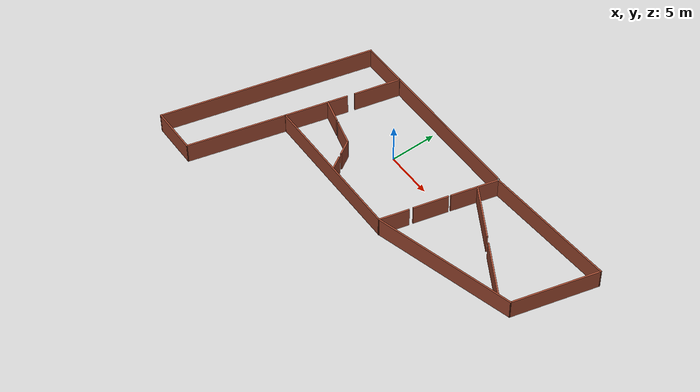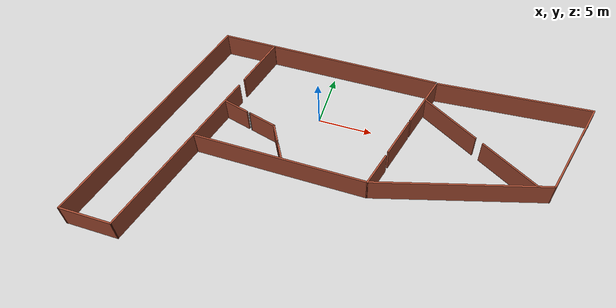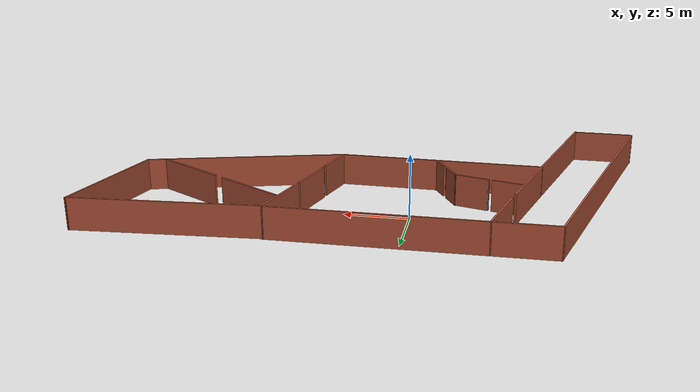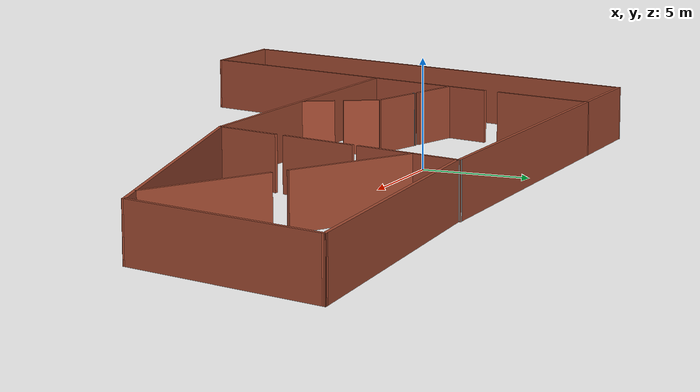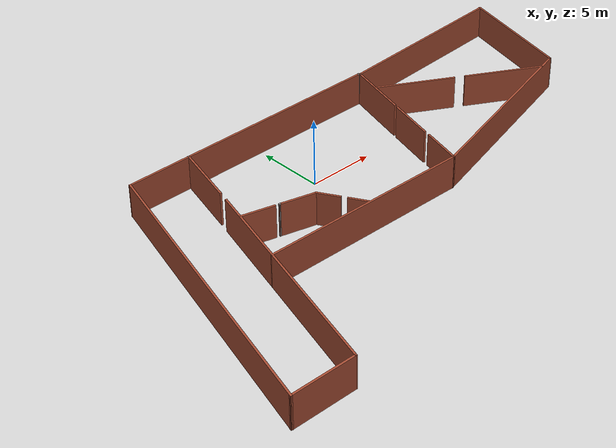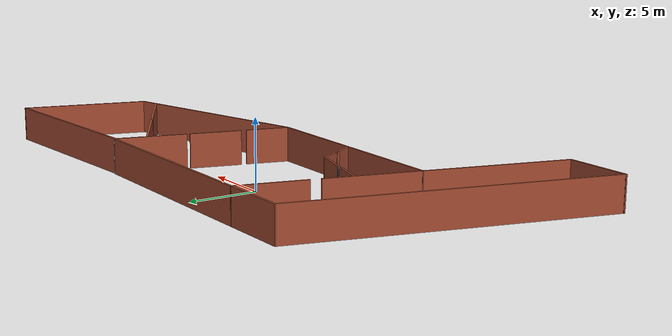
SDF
<?xml version='1.0'?>
<sdf version='1.6'>
  <model name='lab2_nasze'>
    <pose frame=''>3.48309 -5.01649 0 0 -0 0</pose>
    <link name='Wall_1'>
      <collision name='Wall_1_Collision'>
        <geometry>
          <box>
            <size>0.15 0.15 2.5</size>
          </box>
        </geometry>
        <pose frame=''>0 0 1.25 0 -0 0</pose>
      </collision>
      <visual name='Wall_1_Visual'>
        <pose frame=''>0 0 1.25 0 -0 0</pose>
        <geometry>
          <box>
            <size>0.15 0.15 2.5</size>
          </box>
        </geometry>
        <material>
          <script>
            <uri>file://media/materials/scripts/gazebo.material</uri>
            <name>Gazebo/Grey</name>
          </script>
          <ambient>1 1 1 1</ambient>
        </material>
        <meta>
          <layer>0</layer>
        </meta>
      </visual>
      <pose frame=''>-9.73023 10.5497 0 0 -0 0</pose>
    </link>
    <link name='Wall_11'>
      <collision name='Wall_11_Collision'>
        <geometry>
          <box>
            <size>4.99411 0.15 2.5</size>
          </box>
        </geometry>
        <pose frame=''>0 0 1.25 0 -0 0</pose>
      </collision>
      <visual name='Wall_11_Visual'>
        <pose frame=''>0 0 1.25 0 -0 0</pose>
        <geometry>
          <box>
            <size>4.99411 0.15 2.5</size>
          </box>
        </geometry>
        <material>
          <script>
            <uri>file://media/materials/scripts/gazebo.material</uri>
            <name>Gazebo/Bricks</name>
          </script>
          <ambient>1 1 1 1</ambient>
        </material>
        <meta>
          <layer>0</layer>
        </meta>
      </visual>
      <pose frame=''>-12.1523 10.5497 0 0 -0 3.14159</pose>
    </link>
    <link name='Wall_12'>
      <collision name='Wall_12_Collision'>
        <geometry>
          <box>
            <size>22.75 0.15 2.5</size>
          </box>
        </geometry>
        <pose frame=''>0 0 1.25 0 -0 0</pose>
      </collision>
      <visual name='Wall_12_Visual'>
        <pose frame=''>0 0 1.25 0 -0 0</pose>
        <geometry>
          <box>
            <size>22.75 0.15 2.5</size>
          </box>
        </geometry>
        <material>
          <script>
            <uri>file://media/materials/scripts/gazebo.material</uri>
            <name>Gazebo/Bricks</name>
          </script>
          <ambient>1 1 1 1</ambient>
        </material>
        <meta>
          <layer>0</layer>
        </meta>
      </visual>
      <pose frame=''>-17.499 -0.365307 0 0 -0 -1.8326</pose>
    </link>
    <link name='Wall_13'>
      <collision name='Wall_13_Collision'>
        <geometry>
          <box>
            <size>4.88784 0.15 2.5</size>
          </box>
        </geometry>
        <pose frame=''>0 0 1.25 0 -0 0</pose>
      </collision>
      <visual name='Wall_13_Visual'>
        <pose frame=''>0 0 1.25 0 -0 0</pose>
        <geometry>
          <box>
            <size>4.88784 0.15 2.5</size>
          </box>
        </geometry>
        <material>
          <script>
            <uri>file://media/materials/scripts/gazebo.material</uri>
            <name>Gazebo/Bricks</name>
          </script>
          <ambient>1 1 1 1</ambient>
        </material>
        <meta>
          <layer>0</layer>
        </meta>
      </visual>
      <pose frame=''>-18.0552 -11.3286 0 0 -0 -0.020389</pose>
    </link>
    <link name='Wall_15'>
      <collision name='Wall_15_Collision'>
        <geometry>
          <box>
            <size>10.5214 0.15 2.5</size>
          </box>
        </geometry>
        <pose frame=''>0 0 1.25 0 -0 0</pose>
      </collision>
      <visual name='Wall_15_Visual'>
        <pose frame=''>0 0 1.25 0 -0 0</pose>
        <geometry>
          <box>
            <size>10.5214 0.15 2.5</size>
          </box>
        </geometry>
        <material>
          <script>
            <uri>file://media/materials/scripts/gazebo.material</uri>
            <name>Gazebo/Bricks</name>
          </script>
          <ambient>1 1 1 1</ambient>
        </material>
        <meta>
          <layer>0</layer>
        </meta>
      </visual>
      <pose frame=''>-14.3067 -6.3782 0 0 -0 1.30142</pose>
    </link>
    <link name='Wall_17'>
      <collision name='Wall_17_Collision'>
        <geometry>
          <box>
            <size>6.72848 0.15 2.5</size>
          </box>
        </geometry>
        <pose frame=''>0 0 1.25 0 -0 0</pose>
      </collision>
      <visual name='Wall_17_Visual'>
        <pose frame=''>0 0 1.25 0 -0 0</pose>
        <geometry>
          <box>
            <size>6.72848 0.15 2.5</size>
          </box>
        </geometry>
        <material>
          <script>
            <uri>file://media/materials/scripts/gazebo.material</uri>
            <name>Gazebo/Bricks</name>
          </script>
          <ambient>1 1 1 1</ambient>
        </material>
        <meta>
          <layer>0</layer>
        </meta>
      </visual>
      <pose frame=''>-12.0572 1.79273 0 0 -0 1.3033</pose>
    </link>
    <link name='Wall_2'>
      <collision name='Wall_2_Collision'>
        <geometry>
          <box>
            <size>16.0059 0.15 2.5</size>
          </box>
        </geometry>
        <pose frame=''>0 0 1.25 0 -0 0</pose>
      </collision>
      <visual name='Wall_2_Visual'>
        <pose frame=''>0 0 1.25 0 -0 0</pose>
        <geometry>
          <box>
            <size>16.0059 0.15 2.5</size>
          </box>
        </geometry>
        <material>
          <script>
            <uri>file://media/materials/scripts/gazebo.material</uri>
            <name>Gazebo/Bricks</name>
          </script>
          <ambient>1 1 1 1</ambient>
        </material>
        <meta>
          <layer>0</layer>
        </meta>
      </visual>
      <pose frame=''>-1.80228 10.5497 0 0 -0 0</pose>
    </link>
    <link name='Wall_20'>
      <collision name='Wall_20_Collision'>
        <geometry>
          <box>
            <size>5.02177 0.15 2.5</size>
          </box>
        </geometry>
        <pose frame=''>0 0 1.25 0 -0 0</pose>
      </collision>
      <visual name='Wall_20_Visual'>
        <pose frame=''>0 0 1.25 0 -0 0</pose>
        <geometry>
          <box>
            <size>5.02177 0.15 2.5</size>
          </box>
        </geometry>
        <material>
          <script>
            <uri>file://media/materials/scripts/gazebo.material</uri>
            <name>Gazebo/Bricks</name>
          </script>
          <ambient>1 1 1 1</ambient>
        </material>
        <meta>
          <layer>0</layer>
        </meta>
      </visual>
      <pose frame=''>-10.3426 8.19199 0 0 -0 1.31669</pose>
    </link>
    <link name='Wall_22'>
      <collision name='Wall_22_Collision'>
        <geometry>
          <box>
            <size>3.23311 0.15 2.5</size>
          </box>
        </geometry>
        <pose frame=''>0 0 1.25 0 -0 0</pose>
      </collision>
      <visual name='Wall_22_Visual'>
        <pose frame=''>0 0 1.25 0 -0 0</pose>
        <geometry>
          <box>
            <size>3.23311 0.15 2.5</size>
          </box>
        </geometry>
        <material>
          <script>
            <uri>file://media/materials/scripts/gazebo.material</uri>
            <name>Gazebo/Bricks</name>
          </script>
          <ambient>1 1 1 1</ambient>
        </material>
        <meta>
          <layer>0</layer>
        </meta>
      </visual>
      <pose frame=''>3.33642 -0.203282 0 0 -0 1.30753</pose>
    </link>
    <link name='Wall_25'>
      <collision name='Wall_25_Collision'>
        <geometry>
          <box>
            <size>3.75 0.15 2.5</size>
          </box>
        </geometry>
        <pose frame=''>0 0 1.25 0 -0 0</pose>
      </collision>
      <visual name='Wall_25_Visual'>
        <pose frame=''>0 0 1.25 0 -0 0</pose>
        <geometry>
          <box>
            <size>3.75 0.15 2.5</size>
          </box>
        </geometry>
        <material>
          <script>
            <uri>file://media/materials/scripts/gazebo.material</uri>
            <name>Gazebo/Bricks</name>
          </script>
          <ambient>1 1 1 1</ambient>
        </material>
        <meta>
          <layer>0</layer>
        </meta>
      </visual>
      <pose frame=''>4.31947 3.55967 0 0 -0 1.309</pose>
    </link>
    <link name='Wall_3'>
      <collision name='Wall_3_Collision'>
        <geometry>
          <box>
            <size>0.25 0.15 2.5</size>
          </box>
        </geometry>
        <pose frame=''>0 0 1.25 0 -0 0</pose>
      </collision>
      <visual name='Wall_3_Visual'>
        <pose frame=''>0 0 1.25 0 -0 0</pose>
        <geometry>
          <box>
            <size>0.25 0.15 2.5</size>
          </box>
        </geometry>
        <material>
          <script>
            <uri>file://media/materials/scripts/gazebo.material</uri>
            <name>Gazebo/Grey</name>
          </script>
          <ambient>1 1 1 1</ambient>
        </material>
        <meta>
          <layer>0</layer>
        </meta>
      </visual>
      <pose frame=''>6.16102 10.5143 0 0 -0 -0.785398</pose>
    </link>
    <link name='Wall_33'>
      <collision name='Wall_33_Collision'>
        <geometry>
          <box>
            <size>5.14433 0.15 2.5</size>
          </box>
        </geometry>
        <pose frame=''>0 0 1.25 0 -0 0</pose>
      </collision>
      <visual name='Wall_33_Visual'>
        <pose frame=''>0 0 1.25 0 -0 0</pose>
        <geometry>
          <box>
            <size>5.14433 0.15 2.5</size>
          </box>
        </geometry>
        <material>
          <script>
            <uri>file://media/materials/scripts/gazebo.material</uri>
            <name>Gazebo/Bricks</name>
          </script>
          <ambient>1 1 1 1</ambient>
        </material>
        <meta>
          <layer>0</layer>
        </meta>
      </visual>
      <pose frame=''>5.53938 8.06975 0 0 -0 1.30457</pose>
    </link>
    <link name='Wall_35'>
      <collision name='Wall_35_Collision'>
        <geometry>
          <box>
            <size>6 0.15 2.5</size>
          </box>
        </geometry>
        <pose frame=''>0 0 1.25 0 -0 0</pose>
      </collision>
      <visual name='Wall_35_Visual'>
        <pose frame=''>0 0 1.25 0 -0 0</pose>
        <geometry>
          <box>
            <size>6 0.15 2.5</size>
          </box>
        </geometry>
        <material>
          <script>
            <uri>file://media/materials/scripts/gazebo.material</uri>
            <name>Gazebo/Bricks</name>
          </script>
          <ambient>1 1 1 1</ambient>
        </material>
        <meta>
          <layer>0</layer>
        </meta>
      </visual>
      <pose frame=''>8.20487 6.8426 0 0 -0 -0.523599</pose>
    </link>
    <link name='Wall_39'>
      <collision name='Wall_39_Collision'>
        <geometry>
          <box>
            <size>6 0.15 2.5</size>
          </box>
        </geometry>
        <pose frame=''>0 0 1.25 0 -0 0</pose>
      </collision>
      <visual name='Wall_39_Visual'>
        <pose frame=''>0 0 1.25 0 -0 0</pose>
        <geometry>
          <box>
            <size>6 0.15 2.5</size>
          </box>
        </geometry>
        <material>
          <script>
            <uri>file://media/materials/scripts/gazebo.material</uri>
            <name>Gazebo/Bricks</name>
          </script>
          <ambient>1 1 1 1</ambient>
        </material>
        <meta>
          <layer>0</layer>
        </meta>
      </visual>
      <pose frame=''>14.0505 3.4676 0 0 -0 -0.523599</pose>
    </link>
    <link name='Wall_44'>
      <collision name='Wall_44_Collision'>
        <geometry>
          <box>
            <size>1.75 0.15 2.5</size>
          </box>
        </geometry>
        <pose frame=''>0 0 1.25 0 -0 0</pose>
      </collision>
      <visual name='Wall_44_Visual'>
        <pose frame=''>0 0 1.25 0 -0 0</pose>
        <geometry>
          <box>
            <size>1.75 0.15 2.5</size>
          </box>
        </geometry>
        <material>
          <script>
            <uri>file://media/materials/scripts/gazebo.material</uri>
            <name>Gazebo/Bricks</name>
          </script>
          <ambient>1 1 1 1</ambient>
        </material>
        <meta>
          <layer>0</layer>
        </meta>
      </visual>
      <pose frame=''>-6.12211 0.896533 0 0 -0 -1.04732</pose>
    </link>
    <link name='Wall_47'>
      <collision name='Wall_47_Collision'>
        <geometry>
          <box>
            <size>1.5 0.15 2.5</size>
          </box>
        </geometry>
        <pose frame=''>0 0 1.25 0 -0 0</pose>
      </collision>
      <visual name='Wall_47_Visual'>
        <pose frame=''>0 0 1.25 0 -0 0</pose>
        <geometry>
          <box>
            <size>1.5 0.15 2.5</size>
          </box>
        </geometry>
        <material>
          <script>
            <uri>file://media/materials/scripts/gazebo.material</uri>
            <name>Gazebo/Bricks</name>
          </script>
          <ambient>1 1 1 1</ambient>
        </material>
        <meta>
          <layer>0</layer>
        </meta>
      </visual>
      <pose frame=''>-5.10959 -0.857082 0 0 -0 -1.0472</pose>
    </link>
    <link name='Wall_49'>
      <collision name='Wall_49_Collision'>
        <geometry>
          <box>
            <size>2.75 0.15 2.5</size>
          </box>
        </geometry>
        <pose frame=''>0 0 1.25 0 -0 0</pose>
      </collision>
      <visual name='Wall_49_Visual'>
        <pose frame=''>0 0 1.25 0 -0 0</pose>
        <geometry>
          <box>
            <size>2.75 0.15 2.5</size>
          </box>
        </geometry>
        <material>
          <script>
            <uri>file://media/materials/scripts/gazebo.material</uri>
            <name>Gazebo/Bricks</name>
          </script>
          <ambient>1 1 1 1</ambient>
        </material>
        <meta>
          <layer>0</layer>
        </meta>
      </visual>
      <pose frame=''>-7.77782 1.92605 0 0 -0 2.87979</pose>
    </link>
    <link name='Wall_50'>
      <collision name='Wall_50_Collision'>
        <geometry>
          <box>
            <size>0.15 0.15 2.5</size>
          </box>
        </geometry>
        <pose frame=''>0 0 1.25 0 -0 0</pose>
      </collision>
      <visual name='Wall_50_Visual'>
        <pose frame=''>0 0 1.25 0 -0 0</pose>
        <geometry>
          <box>
            <size>0.15 0.15 2.5</size>
          </box>
        </geometry>
        <material>
          <script>
            <uri>file://media/materials/scripts/gazebo.material</uri>
            <name>Gazebo/Grey</name>
          </script>
          <ambient>1 1 1 1</ambient>
        </material>
        <meta>
          <layer>0</layer>
        </meta>
      </visual>
      <pose frame=''>-9.03353 2.26251 0 0 -0 0</pose>
    </link>
    <link name='Wall_53'>
      <collision name='Wall_53_Collision'>
        <geometry>
          <box>
            <size>2.5 0.15 2.5</size>
          </box>
        </geometry>
        <pose frame=''>0 0 1.25 0 -0 0</pose>
      </collision>
      <visual name='Wall_53_Visual'>
        <pose frame=''>0 0 1.25 0 -0 0</pose>
        <geometry>
          <box>
            <size>2.5 0.15 2.5</size>
          </box>
        </geometry>
        <material>
          <script>
            <uri>file://media/materials/scripts/gazebo.material</uri>
            <name>Gazebo/Bricks</name>
          </script>
          <ambient>1 1 1 1</ambient>
        </material>
        <meta>
          <layer>0</layer>
        </meta>
      </visual>
      <pose frame=''>-10.5307 2.66368 0 0 -0 2.87979</pose>
    </link>
    <link name='Wall_6'>
      <collision name='Wall_6_Collision'>
        <geometry>
          <box>
            <size>16.015 0.15 2.5</size>
          </box>
        </geometry>
        <pose frame=''>0 0 1.25 0 -0 0</pose>
      </collision>
      <visual name='Wall_6_Visual'>
        <pose frame=''>0 0 1.25 0 -0 0</pose>
        <geometry>
          <box>
            <size>16.015 0.15 2.5</size>
          </box>
        </geometry>
        <material>
          <script>
            <uri>file://media/materials/scripts/gazebo.material</uri>
            <name>Gazebo/Bricks</name>
          </script>
          <ambient>1 1 1 1</ambient>
        </material>
        <meta>
          <layer>0</layer>
        </meta>
      </visual>
      <pose frame=''>-4.9957 -1.53563 0 0 -0 -0.019679</pose>
    </link>
    <link name='Wall_7'>
      <collision name='Wall_7_Collision'>
        <geometry>
          <box>
            <size>15.75 0.15 2.5</size>
          </box>
        </geometry>
        <pose frame=''>0 0 1.25 0 -0 0</pose>
      </collision>
      <visual name='Wall_7_Visual'>
        <pose frame=''>0 0 1.25 0 -0 0</pose>
        <geometry>
          <box>
            <size>15.75 0.15 2.5</size>
          </box>
        </geometry>
        <material>
          <script>
            <uri>file://media/materials/scripts/gazebo.material</uri>
            <name>Gazebo/Bricks</name>
          </script>
          <ambient>1 1 1 1</ambient>
        </material>
        <meta>
          <layer>0</layer>
        </meta>
      </visual>
      <pose frame=''>10.4695 0.327067 0 0 -0 0.261799</pose>
    </link>
    <link name='Wall_8'>
      <collision name='Wall_8_Collision'>
        <geometry>
          <box>
            <size>9.5 0.15 2.5</size>
          </box>
        </geometry>
        <pose frame=''>0 0 1.25 0 -0 0</pose>
      </collision>
      <visual name='Wall_8_Visual'>
        <pose frame=''>0 0 1.25 0 -0 0</pose>
        <geometry>
          <box>
            <size>9.5 0.15 2.5</size>
          </box>
        </geometry>
        <material>
          <script>
            <uri>file://media/materials/scripts/gazebo.material</uri>
            <name>Gazebo/Bricks</name>
          </script>
          <ambient>1 1 1 1</ambient>
        </material>
        <meta>
          <layer>0</layer>
        </meta>
      </visual>
      <pose frame=''>19.2137 6.86156 0 0 -0 1.309</pose>
    </link>
    <link name='Wall_9'>
      <collision name='Wall_9_Collision'>
        <geometry>
          <box>
            <size>14.4056 0.15 2.5</size>
          </box>
        </geometry>
        <pose frame=''>0 0 1.25 0 -0 0</pose>
      </collision>
      <visual name='Wall_9_Visual'>
        <pose frame=''>0 0 1.25 0 -0 0</pose>
        <geometry>
          <box>
            <size>14.4056 0.15 2.5</size>
          </box>
        </geometry>
        <material>
          <script>
            <uri>file://media/materials/scripts/gazebo.material</uri>
            <name>Gazebo/Bricks</name>
          </script>
          <ambient>1 1 1 1</ambient>
        </material>
        <meta>
          <layer>0</layer>
        </meta>
      </visual>
      <pose frame=''>13.31 10.9281 0 0 -0 -3.07854</pose>
    </link>
    <static>1</static>
  </model>
</sdf>
